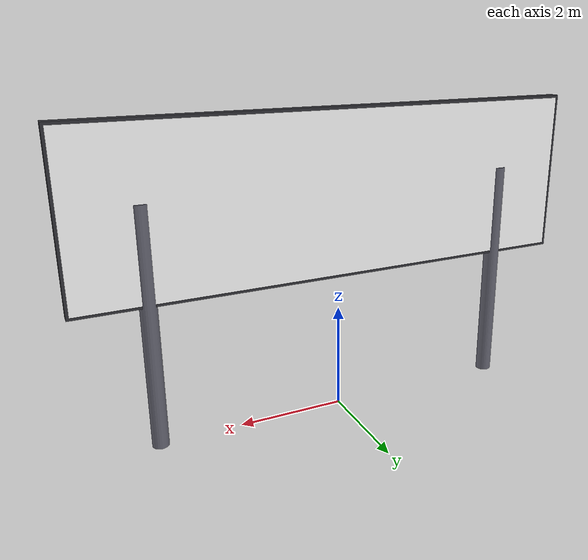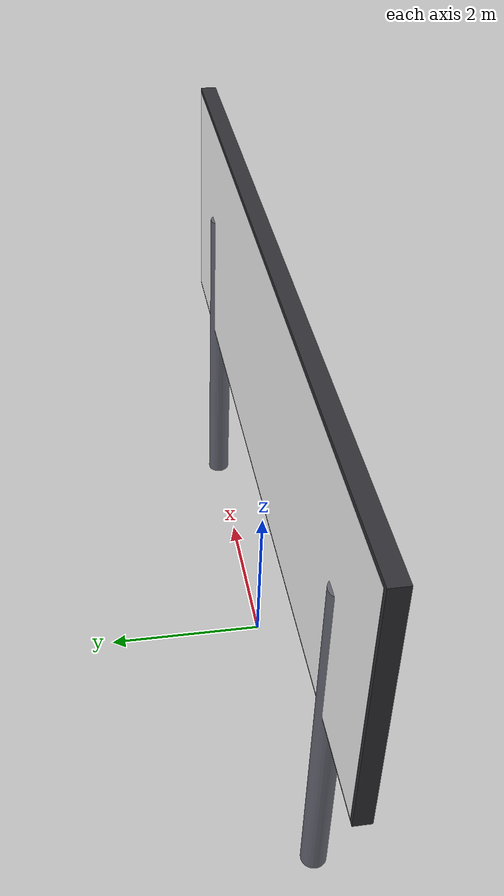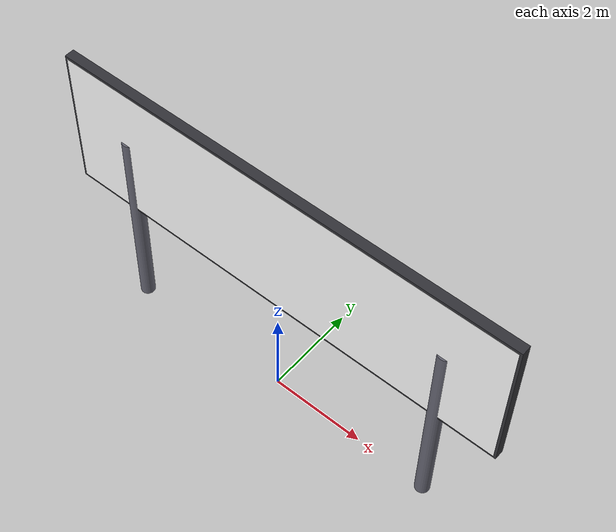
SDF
<?xml version="1.0" encoding="UTF-8"?>
<sdf version="1.9">
  <model name="isilab_billboard">
    <static>true</static>
    <link name="link">
      <!-- Cột đỡ trụ bên trái (thép xám) -->
      <collision name="pillar_left_col">
        <pose>-3.5 0 2.2 0 0 0</pose>
        <geometry><cylinder><radius>0.15</radius><length>4.4</length></cylinder></geometry>
      </collision>
      <visual name="pillar_left">
        <pose>-3.5 0 2.2 0 0 0</pose>
        <geometry><cylinder><radius>0.15</radius><length>4.4</length></cylinder></geometry>
        <material>
          <ambient>0.3 0.3 0.35 1</ambient>
          <diffuse>0.4 0.4 0.45 1</diffuse>
          <specular>0.5 0.5 0.5 1</specular>
        </material>
      </visual>

      <!-- Cột đỡ trụ bên phải -->
      <collision name="pillar_right_col">
        <pose>3.5 0 2.2 0 0 0</pose>
        <geometry><cylinder><radius>0.15</radius><length>4.4</length></cylinder></geometry>
      </collision>
      <visual name="pillar_right">
        <pose>3.5 0 2.2 0 0 0</pose>
        <geometry><cylinder><radius>0.15</radius><length>4.4</length></cylinder></geometry>
        <material>
          <ambient>0.3 0.3 0.35 1</ambient>
          <diffuse>0.4 0.4 0.45 1</diffuse>
          <specular>0.5 0.5 0.5 1</specular>
        </material>
      </visual>

      <!-- Khung bảng chính (Hộp đỡ phía sau) -->
      <collision name="board_frame_col">
        <pose>0 0 4.2 0 0 0</pose>
        <geometry><box><size>9.6 0.2 3.1</size></box></geometry>
      </collision>
      <visual name="board_frame">
        <pose>0 0 4.2 0 0 0</pose>
        <geometry><box><size>9.6 0.2 3.1</size></box></geometry>
        <material>
          <ambient>0.15 0.15 0.18 1</ambient>
          <diffuse>0.2 0.2 0.22 1</diffuse>
        </material>
      </visual>

      <!-- Mặt trước hiển thị Banner Logo ISILAB (Hướng về -Y) -->
      <visual name="banner_front">
        <pose>0 -0.105 4.2 1.5708 0 0</pose>
        <cast_shadows>false</cast_shadows>
        <geometry>
          <plane>
            <normal>0 0 1</normal>
            <size>9.5 3.0</size>
          </plane>
        </geometry>
        <material>
          <ambient>0.9 0.9 0.9 1</ambient>
          <diffuse>1.0 1.0 1.0 1</diffuse>
          <pbr>
            <metal>
              <albedo_map>model://isilab_billboard/materials/textures/isilab_banner.png</albedo_map>
              <roughness>0.3</roughness>
              <metalness>0.0</metalness>
            </metal>
          </pbr>
        </material>
      </visual>

      <!-- Mặt sau hiển thị Banner Logo ISILAB (Hướng về +Y) -->
      <visual name="banner_back">
        <pose>0 0.105 4.2 -1.5708 0 3.14159</pose>
        <cast_shadows>false</cast_shadows>
        <geometry>
          <plane>
            <normal>0 0 1</normal>
            <size>9.5 3.0</size>
          </plane>
        </geometry>
        <material>
          <ambient>0.9 0.9 0.9 1</ambient>
          <diffuse>1.0 1.0 1.0 1</diffuse>
          <pbr>
            <metal>
              <albedo_map>model://isilab_billboard/materials/textures/isilab_banner.png</albedo_map>
              <roughness>0.3</roughness>
              <metalness>0.0</metalness>
            </metal>
          </pbr>
        </material>
      </visual>
    </link>
  </model>
</sdf>
